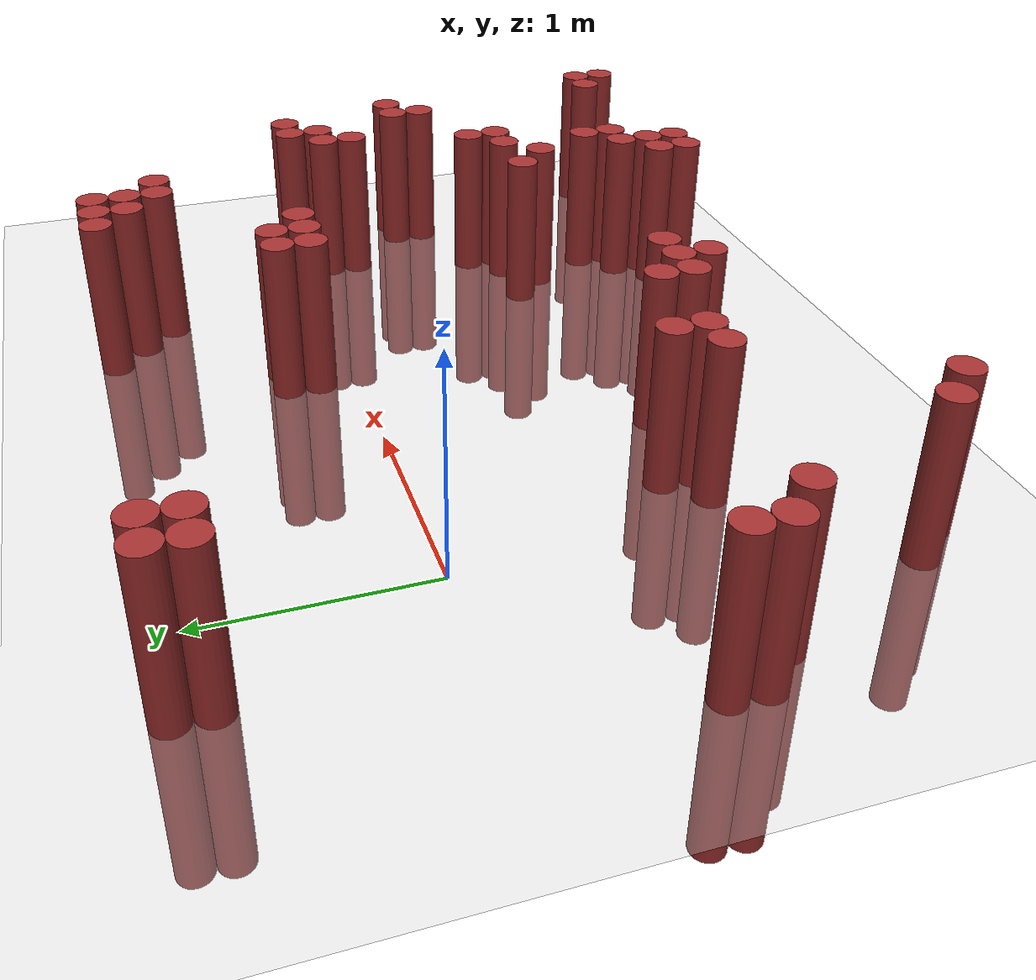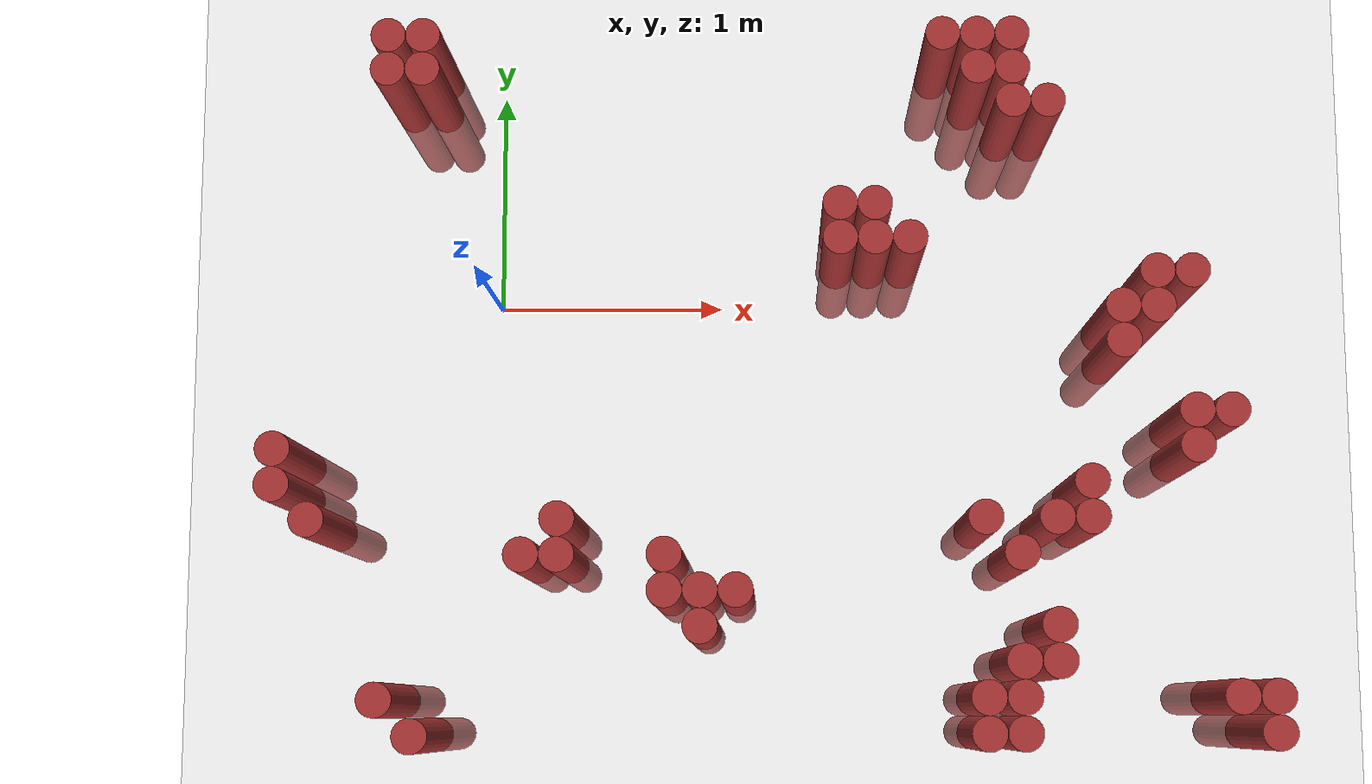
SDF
<sdf version="1.6">
 <world name="default">
  <model name="ground_plane">
   <static>1</static>
   <link name="link">
    <collision name="collision">
     <geometry><plane><normal>0 0 1</normal><size>100 100</size></plane></geometry>
     <surface><friction><ode><mu>100</mu><mu2>50</mu2></ode></friction></surface>
    </collision>
    <visual name="visual">
     <cast_shadows>0</cast_shadows>
     <geometry><plane><normal>0 0 1</normal><size>100 100</size></plane></geometry>
     <material>
      <script><uri>file://media/materials/scripts/gazebo.material</uri><name>Gazebo/Grey</name></script>
     </material>
    </visual>
   </link>
  </model>
  <model name="unit_cylinder_319">
   <static>1</static>
   <pose>-0.875000 -0.875000 0.000000 0.000000 0.000000 0.000000</pose>
   <link name="link">
    <inertial>
     <mass>1</mass>
     <inertia><ixx>0.145833</ixx><ixy>0</ixy><ixz>0</ixz><iyy>0.145833</iyy><iyz>0</iyz><izz>0.125</izz></inertia>
    </inertial>
    <collision name="collision">
     <geometry><cylinder><radius>0.075000</radius><length>1.5</length></cylinder></geometry>
    </collision>
    <visual name="visual">
     <geometry><cylinder><radius>0.075000</radius><length>1.5</length></cylinder></geometry>
     <material>
      <ambient>0.648000 0.192000 0.192000 1</ambient>
      <diffuse>0.648000 0.192000 0.192000 1</diffuse>
     </material>
     <material>
      <script><name>Gazebo/Grey</name><uri>file://media/materials/scripts/gazebo.material</uri></script>
     </material>
    </visual>
   </link>
  </model>
  <model name="unit_cylinder_320">
   <static>1</static>
   <pose>-0.875000 -0.725000 0.000000 0.000000 0.000000 0.000000</pose>
   <link name="link">
    <inertial>
     <mass>1</mass>
     <inertia><ixx>0.145833</ixx><ixy>0</ixy><ixz>0</ixz><iyy>0.145833</iyy><iyz>0</iyz><izz>0.125</izz></inertia>
    </inertial>
    <collision name="collision">
     <geometry><cylinder><radius>0.075000</radius><length>1.5</length></cylinder></geometry>
    </collision>
    <visual name="visual">
     <geometry><cylinder><radius>0.075000</radius><length>1.5</length></cylinder></geometry>
     <material>
      <ambient>0.648000 0.192000 0.192000 1</ambient>
      <diffuse>0.648000 0.192000 0.192000 1</diffuse>
     </material>
     <material>
      <script><name>Gazebo/Grey</name><uri>file://media/materials/scripts/gazebo.material</uri></script>
     </material>
    </visual>
   </link>
  </model>
  <model name="unit_cylinder_321">
   <static>1</static>
   <pose>-0.725000 -1.025000 0.000000 0.000000 0.000000 0.000000</pose>
   <link name="link">
    <inertial>
     <mass>1</mass>
     <inertia><ixx>0.145833</ixx><ixy>0</ixy><ixz>0</ixz><iyy>0.145833</iyy><iyz>0</iyz><izz>0.125</izz></inertia>
    </inertial>
    <collision name="collision">
     <geometry><cylinder><radius>0.075000</radius><length>1.5</length></cylinder></geometry>
    </collision>
    <visual name="visual">
     <geometry><cylinder><radius>0.075000</radius><length>1.5</length></cylinder></geometry>
     <material>
      <ambient>0.648000 0.192000 0.192000 1</ambient>
      <diffuse>0.648000 0.192000 0.192000 1</diffuse>
     </material>
     <material>
      <script><name>Gazebo/Grey</name><uri>file://media/materials/scripts/gazebo.material</uri></script>
     </material>
    </visual>
   </link>
  </model>
  <model name="unit_cylinder_325">
   <static>1</static>
   <pose>-0.425000 -1.775000 0.000000 0.000000 0.000000 0.000000</pose>
   <link name="link">
    <inertial>
     <mass>1</mass>
     <inertia><ixx>0.145833</ixx><ixy>0</ixy><ixz>0</ixz><iyy>0.145833</iyy><iyz>0</iyz><izz>0.125</izz></inertia>
    </inertial>
    <collision name="collision">
     <geometry><cylinder><radius>0.075000</radius><length>1.5</length></cylinder></geometry>
    </collision>
    <visual name="visual">
     <geometry><cylinder><radius>0.075000</radius><length>1.5</length></cylinder></geometry>
     <material>
      <ambient>0.648000 0.192000 0.192000 1</ambient>
      <diffuse>0.648000 0.192000 0.192000 1</diffuse>
     </material>
     <material>
      <script><name>Gazebo/Grey</name><uri>file://media/materials/scripts/gazebo.material</uri></script>
     </material>
    </visual>
   </link>
  </model>
  <model name="unit_cylinder_326">
   <static>1</static>
   <pose>-0.425000 0.925000 0.000000 0.000000 0.000000 0.000000</pose>
   <link name="link">
    <inertial>
     <mass>1</mass>
     <inertia><ixx>0.145833</ixx><ixy>0</ixy><ixz>0</ixz><iyy>0.145833</iyy><iyz>0</iyz><izz>0.125</izz></inertia>
    </inertial>
    <collision name="collision">
     <geometry><cylinder><radius>0.075000</radius><length>1.5</length></cylinder></geometry>
    </collision>
    <visual name="visual">
     <geometry><cylinder><radius>0.075000</radius><length>1.5</length></cylinder></geometry>
     <material>
      <ambient>0.648000 0.192000 0.192000 1</ambient>
      <diffuse>0.648000 0.192000 0.192000 1</diffuse>
     </material>
     <material>
      <script><name>Gazebo/Grey</name><uri>file://media/materials/scripts/gazebo.material</uri></script>
     </material>
    </visual>
   </link>
  </model>
  <model name="unit_cylinder_327">
   <static>1</static>
   <pose>-0.425000 1.075000 0.000000 0.000000 0.000000 0.000000</pose>
   <link name="link">
    <inertial>
     <mass>1</mass>
     <inertia><ixx>0.145833</ixx><ixy>0</ixy><ixz>0</ixz><iyy>0.145833</iyy><iyz>0</iyz><izz>0.125</izz></inertia>
    </inertial>
    <collision name="collision">
     <geometry><cylinder><radius>0.075000</radius><length>1.5</length></cylinder></geometry>
    </collision>
    <visual name="visual">
     <geometry><cylinder><radius>0.075000</radius><length>1.5</length></cylinder></geometry>
     <material>
      <ambient>0.648000 0.192000 0.192000 1</ambient>
      <diffuse>0.648000 0.192000 0.192000 1</diffuse>
     </material>
     <material>
      <script><name>Gazebo/Grey</name><uri>file://media/materials/scripts/gazebo.material</uri></script>
     </material>
    </visual>
   </link>
  </model>
  <model name="unit_cylinder_329">
   <static>1</static>
   <pose>-0.275000 -1.925000 0.000000 0.000000 0.000000 0.000000</pose>
   <link name="link">
    <inertial>
     <mass>1</mass>
     <inertia><ixx>0.145833</ixx><ixy>0</ixy><ixz>0</ixz><iyy>0.145833</iyy><iyz>0</iyz><izz>0.125</izz></inertia>
    </inertial>
    <collision name="collision">
     <geometry><cylinder><radius>0.075000</radius><length>1.5</length></cylinder></geometry>
    </collision>
    <visual name="visual">
     <geometry><cylinder><radius>0.075000</radius><length>1.5</length></cylinder></geometry>
     <material>
      <ambient>0.648000 0.192000 0.192000 1</ambient>
      <diffuse>0.648000 0.192000 0.192000 1</diffuse>
     </material>
     <material>
      <script><name>Gazebo/Grey</name><uri>file://media/materials/scripts/gazebo.material</uri></script>
     </material>
    </visual>
   </link>
  </model>
  <model name="unit_cylinder_330">
   <static>1</static>
   <pose>-0.275000 0.925000 0.000000 0.000000 0.000000 0.000000</pose>
   <link name="link">
    <inertial>
     <mass>1</mass>
     <inertia><ixx>0.145833</ixx><ixy>0</ixy><ixz>0</ixz><iyy>0.145833</iyy><iyz>0</iyz><izz>0.125</izz></inertia>
    </inertial>
    <collision name="collision">
     <geometry><cylinder><radius>0.075000</radius><length>1.5</length></cylinder></geometry>
    </collision>
    <visual name="visual">
     <geometry><cylinder><radius>0.075000</radius><length>1.5</length></cylinder></geometry>
     <material>
      <ambient>0.648000 0.192000 0.192000 1</ambient>
      <diffuse>0.648000 0.192000 0.192000 1</diffuse>
     </material>
     <material>
      <script><name>Gazebo/Grey</name><uri>file://media/materials/scripts/gazebo.material</uri></script>
     </material>
    </visual>
   </link>
  </model>
  <model name="unit_cylinder_331">
   <static>1</static>
   <pose>-0.275000 1.075000 0.000000 0.000000 0.000000 0.000000</pose>
   <link name="link">
    <inertial>
     <mass>1</mass>
     <inertia><ixx>0.145833</ixx><ixy>0</ixy><ixz>0</ixz><iyy>0.145833</iyy><iyz>0</iyz><izz>0.125</izz></inertia>
    </inertial>
    <collision name="collision">
     <geometry><cylinder><radius>0.075000</radius><length>1.5</length></cylinder></geometry>
    </collision>
    <visual name="visual">
     <geometry><cylinder><radius>0.075000</radius><length>1.5</length></cylinder></geometry>
     <material>
      <ambient>0.648000 0.192000 0.192000 1</ambient>
      <diffuse>0.648000 0.192000 0.192000 1</diffuse>
     </material>
     <material>
      <script><name>Gazebo/Grey</name><uri>file://media/materials/scripts/gazebo.material</uri></script>
     </material>
    </visual>
   </link>
  </model>
  <model name="unit_cylinder_335">
   <static>1</static>
   <pose>0.175000 -1.175000 0.000000 0.000000 0.000000 0.000000</pose>
   <link name="link">
    <inertial>
     <mass>1</mass>
     <inertia><ixx>0.145833</ixx><ixy>0</ixy><ixz>0</ixz><iyy>0.145833</iyy><iyz>0</iyz><izz>0.125</izz></inertia>
    </inertial>
    <collision name="collision">
     <geometry><cylinder><radius>0.075000</radius><length>1.5</length></cylinder></geometry>
    </collision>
    <visual name="visual">
     <geometry><cylinder><radius>0.075000</radius><length>1.5</length></cylinder></geometry>
     <material>
      <ambient>0.648000 0.192000 0.192000 1</ambient>
      <diffuse>0.648000 0.192000 0.192000 1</diffuse>
     </material>
     <material>
      <script><name>Gazebo/Grey</name><uri>file://media/materials/scripts/gazebo.material</uri></script>
     </material>
    </visual>
   </link>
  </model>
  <model name="unit_cylinder_337">
   <static>1</static>
   <pose>0.325000 -1.175000 0.000000 0.000000 0.000000 0.000000</pose>
   <link name="link">
    <inertial>
     <mass>1</mass>
     <inertia><ixx>0.145833</ixx><ixy>0</ixy><ixz>0</ixz><iyy>0.145833</iyy><iyz>0</iyz><izz>0.125</izz></inertia>
    </inertial>
    <collision name="collision">
     <geometry><cylinder><radius>0.075000</radius><length>1.5</length></cylinder></geometry>
    </collision>
    <visual name="visual">
     <geometry><cylinder><radius>0.075000</radius><length>1.5</length></cylinder></geometry>
     <material>
      <ambient>0.648000 0.192000 0.192000 1</ambient>
      <diffuse>0.648000 0.192000 0.192000 1</diffuse>
     </material>
     <material>
      <script><name>Gazebo/Grey</name><uri>file://media/materials/scripts/gazebo.material</uri></script>
     </material>
    </visual>
   </link>
  </model>
  <model name="unit_cylinder_338">
   <static>1</static>
   <pose>0.325000 -1.025000 0.000000 0.000000 0.000000 0.000000</pose>
   <link name="link">
    <inertial>
     <mass>1</mass>
     <inertia><ixx>0.145833</ixx><ixy>0</ixy><ixz>0</ixz><iyy>0.145833</iyy><iyz>0</iyz><izz>0.125</izz></inertia>
    </inertial>
    <collision name="collision">
     <geometry><cylinder><radius>0.075000</radius><length>1.5</length></cylinder></geometry>
    </collision>
    <visual name="visual">
     <geometry><cylinder><radius>0.075000</radius><length>1.5</length></cylinder></geometry>
     <material>
      <ambient>0.648000 0.192000 0.192000 1</ambient>
      <diffuse>0.648000 0.192000 0.192000 1</diffuse>
     </material>
     <material>
      <script><name>Gazebo/Grey</name><uri>file://media/materials/scripts/gazebo.material</uri></script>
     </material>
    </visual>
   </link>
  </model>
  <model name="unit_cylinder_339">
   <static>1</static>
   <pose>0.775000 -1.325000 0.000000 0.000000 0.000000 0.000000</pose>
   <link name="link">
    <inertial>
     <mass>1</mass>
     <inertia><ixx>0.145833</ixx><ixy>0</ixy><ixz>0</ixz><iyy>0.145833</iyy><iyz>0</iyz><izz>0.125</izz></inertia>
    </inertial>
    <collision name="collision">
     <geometry><cylinder><radius>0.075000</radius><length>1.5</length></cylinder></geometry>
    </collision>
    <visual name="visual">
     <geometry><cylinder><radius>0.075000</radius><length>1.5</length></cylinder></geometry>
     <material>
      <ambient>0.648000 0.192000 0.192000 1</ambient>
      <diffuse>0.648000 0.192000 0.192000 1</diffuse>
     </material>
     <material>
      <script><name>Gazebo/Grey</name><uri>file://media/materials/scripts/gazebo.material</uri></script>
     </material>
    </visual>
   </link>
  </model>
  <model name="unit_cylinder_340">
   <static>1</static>
   <pose>0.775000 -1.175000 0.000000 0.000000 0.000000 0.000000</pose>
   <link name="link">
    <inertial>
     <mass>1</mass>
     <inertia><ixx>0.145833</ixx><ixy>0</ixy><ixz>0</ixz><iyy>0.145833</iyy><iyz>0</iyz><izz>0.125</izz></inertia>
    </inertial>
    <collision name="collision">
     <geometry><cylinder><radius>0.075000</radius><length>1.5</length></cylinder></geometry>
    </collision>
    <visual name="visual">
     <geometry><cylinder><radius>0.075000</radius><length>1.5</length></cylinder></geometry>
     <material>
      <ambient>0.648000 0.192000 0.192000 1</ambient>
      <diffuse>0.648000 0.192000 0.192000 1</diffuse>
     </material>
     <material>
      <script><name>Gazebo/Grey</name><uri>file://media/materials/scripts/gazebo.material</uri></script>
     </material>
    </visual>
   </link>
  </model>
  <model name="unit_cylinder_341">
   <static>1</static>
   <pose>0.925000 -1.475000 0.000000 0.000000 0.000000 0.000000</pose>
   <link name="link">
    <inertial>
     <mass>1</mass>
     <inertia><ixx>0.145833</ixx><ixy>0</ixy><ixz>0</ixz><iyy>0.145833</iyy><iyz>0</iyz><izz>0.125</izz></inertia>
    </inertial>
    <collision name="collision">
     <geometry><cylinder><radius>0.075000</radius><length>1.5</length></cylinder></geometry>
    </collision>
    <visual name="visual">
     <geometry><cylinder><radius>0.075000</radius><length>1.5</length></cylinder></geometry>
     <material>
      <ambient>0.648000 0.192000 0.192000 1</ambient>
      <diffuse>0.648000 0.192000 0.192000 1</diffuse>
     </material>
     <material>
      <script><name>Gazebo/Grey</name><uri>file://media/materials/scripts/gazebo.material</uri></script>
     </material>
    </visual>
   </link>
  </model>
  <model name="unit_cylinder_342">
   <static>1</static>
   <pose>0.925000 -1.325000 0.000000 0.000000 0.000000 0.000000</pose>
   <link name="link">
    <inertial>
     <mass>1</mass>
     <inertia><ixx>0.145833</ixx><ixy>0</ixy><ixz>0</ixz><iyy>0.145833</iyy><iyz>0</iyz><izz>0.125</izz></inertia>
    </inertial>
    <collision name="collision">
     <geometry><cylinder><radius>0.075000</radius><length>1.5</length></cylinder></geometry>
    </collision>
    <visual name="visual">
     <geometry><cylinder><radius>0.075000</radius><length>1.5</length></cylinder></geometry>
     <material>
      <ambient>0.648000 0.192000 0.192000 1</ambient>
      <diffuse>0.648000 0.192000 0.192000 1</diffuse>
     </material>
     <material>
      <script><name>Gazebo/Grey</name><uri>file://media/materials/scripts/gazebo.material</uri></script>
     </material>
    </visual>
   </link>
  </model>
  <model name="unit_cylinder_343">
   <static>1</static>
   <pose>1.075000 -1.325000 0.000000 0.000000 0.000000 0.000000</pose>
   <link name="link">
    <inertial>
     <mass>1</mass>
     <inertia><ixx>0.145833</ixx><ixy>0</ixy><ixz>0</ixz><iyy>0.145833</iyy><iyz>0</iyz><izz>0.125</izz></inertia>
    </inertial>
    <collision name="collision">
     <geometry><cylinder><radius>0.075000</radius><length>1.5</length></cylinder></geometry>
    </collision>
    <visual name="visual">
     <geometry><cylinder><radius>0.075000</radius><length>1.5</length></cylinder></geometry>
     <material>
      <ambient>0.648000 0.192000 0.192000 1</ambient>
      <diffuse>0.648000 0.192000 0.192000 1</diffuse>
     </material>
     <material>
      <script><name>Gazebo/Grey</name><uri>file://media/materials/scripts/gazebo.material</uri></script>
     </material>
    </visual>
   </link>
  </model>
  <model name="unit_cylinder_350">
   <static>1</static>
   <pose>1.525000 0.175000 0.000000 0.000000 0.000000 0.000000</pose>
   <link name="link">
    <inertial>
     <mass>1</mass>
     <inertia><ixx>0.145833</ixx><ixy>0</ixy><ixz>0</ixz><iyy>0.145833</iyy><iyz>0</iyz><izz>0.125</izz></inertia>
    </inertial>
    <collision name="collision">
     <geometry><cylinder><radius>0.075000</radius><length>1.5</length></cylinder></geometry>
    </collision>
    <visual name="visual">
     <geometry><cylinder><radius>0.075000</radius><length>1.5</length></cylinder></geometry>
     <material>
      <ambient>0.648000 0.192000 0.192000 1</ambient>
      <diffuse>0.648000 0.192000 0.192000 1</diffuse>
     </material>
     <material>
      <script><name>Gazebo/Grey</name><uri>file://media/materials/scripts/gazebo.material</uri></script>
     </material>
    </visual>
   </link>
  </model>
  <model name="unit_cylinder_351">
   <static>1</static>
   <pose>1.525000 0.325000 0.000000 0.000000 0.000000 0.000000</pose>
   <link name="link">
    <inertial>
     <mass>1</mass>
     <inertia><ixx>0.145833</ixx><ixy>0</ixy><ixz>0</ixz><iyy>0.145833</iyy><iyz>0</iyz><izz>0.125</izz></inertia>
    </inertial>
    <collision name="collision">
     <geometry><cylinder><radius>0.075000</radius><length>1.5</length></cylinder></geometry>
    </collision>
    <visual name="visual">
     <geometry><cylinder><radius>0.075000</radius><length>1.5</length></cylinder></geometry>
     <material>
      <ambient>0.648000 0.192000 0.192000 1</ambient>
      <diffuse>0.648000 0.192000 0.192000 1</diffuse>
     </material>
     <material>
      <script><name>Gazebo/Grey</name><uri>file://media/materials/scripts/gazebo.material</uri></script>
     </material>
    </visual>
   </link>
  </model>
  <model name="unit_cylinder_355">
   <static>1</static>
   <pose>1.675000 0.175000 0.000000 0.000000 0.000000 0.000000</pose>
   <link name="link">
    <inertial>
     <mass>1</mass>
     <inertia><ixx>0.145833</ixx><ixy>0</ixy><ixz>0</ixz><iyy>0.145833</iyy><iyz>0</iyz><izz>0.125</izz></inertia>
    </inertial>
    <collision name="collision">
     <geometry><cylinder><radius>0.075000</radius><length>1.5</length></cylinder></geometry>
    </collision>
    <visual name="visual">
     <geometry><cylinder><radius>0.075000</radius><length>1.5</length></cylinder></geometry>
     <material>
      <ambient>0.648000 0.192000 0.192000 1</ambient>
      <diffuse>0.648000 0.192000 0.192000 1</diffuse>
     </material>
     <material>
      <script><name>Gazebo/Grey</name><uri>file://media/materials/scripts/gazebo.material</uri></script>
     </material>
    </visual>
   </link>
  </model>
  <model name="unit_cylinder_356">
   <static>1</static>
   <pose>1.675000 0.325000 0.000000 0.000000 0.000000 0.000000</pose>
   <link name="link">
    <inertial>
     <mass>1</mass>
     <inertia><ixx>0.145833</ixx><ixy>0</ixy><ixz>0</ixz><iyy>0.145833</iyy><iyz>0</iyz><izz>0.125</izz></inertia>
    </inertial>
    <collision name="collision">
     <geometry><cylinder><radius>0.075000</radius><length>1.5</length></cylinder></geometry>
    </collision>
    <visual name="visual">
     <geometry><cylinder><radius>0.075000</radius><length>1.5</length></cylinder></geometry>
     <material>
      <ambient>0.648000 0.192000 0.192000 1</ambient>
      <diffuse>0.648000 0.192000 0.192000 1</diffuse>
     </material>
     <material>
      <script><name>Gazebo/Grey</name><uri>file://media/materials/scripts/gazebo.material</uri></script>
     </material>
    </visual>
   </link>
  </model>
  <model name="unit_cylinder_364">
   <static>1</static>
   <pose>1.825000 0.175000 0.000000 0.000000 0.000000 0.000000</pose>
   <link name="link">
    <inertial>
     <mass>1</mass>
     <inertia><ixx>0.145833</ixx><ixy>0</ixy><ixz>0</ixz><iyy>0.145833</iyy><iyz>0</iyz><izz>0.125</izz></inertia>
    </inertial>
    <collision name="collision">
     <geometry><cylinder><radius>0.075000</radius><length>1.5</length></cylinder></geometry>
    </collision>
    <visual name="visual">
     <geometry><cylinder><radius>0.075000</radius><length>1.5</length></cylinder></geometry>
     <material>
      <ambient>0.648000 0.192000 0.192000 1</ambient>
      <diffuse>0.648000 0.192000 0.192000 1</diffuse>
     </material>
     <material>
      <script><name>Gazebo/Grey</name><uri>file://media/materials/scripts/gazebo.material</uri></script>
     </material>
    </visual>
   </link>
  </model>
  <model name="unit_cylinder_373">
   <static>1</static>
   <pose>1.975000 1.075000 0.000000 0.000000 0.000000 0.000000</pose>
   <link name="link">
    <inertial>
     <mass>1</mass>
     <inertia><ixx>0.145833</ixx><ixy>0</ixy><ixz>0</ixz><iyy>0.145833</iyy><iyz>0</iyz><izz>0.125</izz></inertia>
    </inertial>
    <collision name="collision">
     <geometry><cylinder><radius>0.075000</radius><length>1.5</length></cylinder></geometry>
    </collision>
    <visual name="visual">
     <geometry><cylinder><radius>0.075000</radius><length>1.5</length></cylinder></geometry>
     <material>
      <ambient>0.648000 0.192000 0.192000 1</ambient>
      <diffuse>0.648000 0.192000 0.192000 1</diffuse>
     </material>
     <material>
      <script><name>Gazebo/Grey</name><uri>file://media/materials/scripts/gazebo.material</uri></script>
     </material>
    </visual>
   </link>
  </model>
  <model name="unit_cylinder_381">
   <static>1</static>
   <pose>2.125000 -1.925000 0.000000 0.000000 0.000000 0.000000</pose>
   <link name="link">
    <inertial>
     <mass>1</mass>
     <inertia><ixx>0.145833</ixx><ixy>0</ixy><ixz>0</ixz><iyy>0.145833</iyy><iyz>0</iyz><izz>0.125</izz></inertia>
    </inertial>
    <collision name="collision">
     <geometry><cylinder><radius>0.075000</radius><length>1.5</length></cylinder></geometry>
    </collision>
    <visual name="visual">
     <geometry><cylinder><radius>0.075000</radius><length>1.5</length></cylinder></geometry>
     <material>
      <ambient>0.648000 0.192000 0.192000 1</ambient>
      <diffuse>0.648000 0.192000 0.192000 1</diffuse>
     </material>
     <material>
      <script><name>Gazebo/Grey</name><uri>file://media/materials/scripts/gazebo.material</uri></script>
     </material>
    </visual>
   </link>
  </model>
  <model name="unit_cylinder_382">
   <static>1</static>
   <pose>2.125000 -1.775000 0.000000 0.000000 0.000000 0.000000</pose>
   <link name="link">
    <inertial>
     <mass>1</mass>
     <inertia><ixx>0.145833</ixx><ixy>0</ixy><ixz>0</ixz><iyy>0.145833</iyy><iyz>0</iyz><izz>0.125</izz></inertia>
    </inertial>
    <collision name="collision">
     <geometry><cylinder><radius>0.075000</radius><length>1.5</length></cylinder></geometry>
    </collision>
    <visual name="visual">
     <geometry><cylinder><radius>0.075000</radius><length>1.5</length></cylinder></geometry>
     <material>
      <ambient>0.648000 0.192000 0.192000 1</ambient>
      <diffuse>0.648000 0.192000 0.192000 1</diffuse>
     </material>
     <material>
      <script><name>Gazebo/Grey</name><uri>file://media/materials/scripts/gazebo.material</uri></script>
     </material>
    </visual>
   </link>
  </model>
  <model name="unit_cylinder_383">
   <static>1</static>
   <pose>2.125000 -1.025000 0.000000 0.000000 0.000000 0.000000</pose>
   <link name="link">
    <inertial>
     <mass>1</mass>
     <inertia><ixx>0.145833</ixx><ixy>0</ixy><ixz>0</ixz><iyy>0.145833</iyy><iyz>0</iyz><izz>0.125</izz></inertia>
    </inertial>
    <collision name="collision">
     <geometry><cylinder><radius>0.075000</radius><length>1.5</length></cylinder></geometry>
    </collision>
    <visual name="visual">
     <geometry><cylinder><radius>0.075000</radius><length>1.5</length></cylinder></geometry>
     <material>
      <ambient>0.648000 0.192000 0.192000 1</ambient>
      <diffuse>0.648000 0.192000 0.192000 1</diffuse>
     </material>
     <material>
      <script><name>Gazebo/Grey</name><uri>file://media/materials/scripts/gazebo.material</uri></script>
     </material>
    </visual>
   </link>
  </model>
  <model name="unit_cylinder_384">
   <static>1</static>
   <pose>2.125000 0.925000 0.000000 0.000000 0.000000 0.000000</pose>
   <link name="link">
    <inertial>
     <mass>1</mass>
     <inertia><ixx>0.145833</ixx><ixy>0</ixy><ixz>0</ixz><iyy>0.145833</iyy><iyz>0</iyz><izz>0.125</izz></inertia>
    </inertial>
    <collision name="collision">
     <geometry><cylinder><radius>0.075000</radius><length>1.5</length></cylinder></geometry>
    </collision>
    <visual name="visual">
     <geometry><cylinder><radius>0.075000</radius><length>1.5</length></cylinder></geometry>
     <material>
      <ambient>0.648000 0.192000 0.192000 1</ambient>
      <diffuse>0.648000 0.192000 0.192000 1</diffuse>
     </material>
     <material>
      <script><name>Gazebo/Grey</name><uri>file://media/materials/scripts/gazebo.material</uri></script>
     </material>
    </visual>
   </link>
  </model>
  <model name="unit_cylinder_385">
   <static>1</static>
   <pose>2.125000 1.075000 0.000000 0.000000 0.000000 0.000000</pose>
   <link name="link">
    <inertial>
     <mass>1</mass>
     <inertia><ixx>0.145833</ixx><ixy>0</ixy><ixz>0</ixz><iyy>0.145833</iyy><iyz>0</iyz><izz>0.125</izz></inertia>
    </inertial>
    <collision name="collision">
     <geometry><cylinder><radius>0.075000</radius><length>1.5</length></cylinder></geometry>
    </collision>
    <visual name="visual">
     <geometry><cylinder><radius>0.075000</radius><length>1.5</length></cylinder></geometry>
     <material>
      <ambient>0.648000 0.192000 0.192000 1</ambient>
      <diffuse>0.648000 0.192000 0.192000 1</diffuse>
     </material>
     <material>
      <script><name>Gazebo/Grey</name><uri>file://media/materials/scripts/gazebo.material</uri></script>
     </material>
    </visual>
   </link>
  </model>
  <model name="unit_cylinder_388">
   <static>1</static>
   <pose>2.275000 -1.925000 0.000000 0.000000 0.000000 0.000000</pose>
   <link name="link">
    <inertial>
     <mass>1</mass>
     <inertia><ixx>0.145833</ixx><ixy>0</ixy><ixz>0</ixz><iyy>0.145833</iyy><iyz>0</iyz><izz>0.125</izz></inertia>
    </inertial>
    <collision name="collision">
     <geometry><cylinder><radius>0.075000</radius><length>1.5</length></cylinder></geometry>
    </collision>
    <visual name="visual">
     <geometry><cylinder><radius>0.075000</radius><length>1.5</length></cylinder></geometry>
     <material>
      <ambient>0.648000 0.192000 0.192000 1</ambient>
      <diffuse>0.648000 0.192000 0.192000 1</diffuse>
     </material>
     <material>
      <script><name>Gazebo/Grey</name><uri>file://media/materials/scripts/gazebo.material</uri></script>
     </material>
    </visual>
   </link>
  </model>
  <model name="unit_cylinder_389">
   <static>1</static>
   <pose>2.275000 -1.775000 0.000000 0.000000 0.000000 0.000000</pose>
   <link name="link">
    <inertial>
     <mass>1</mass>
     <inertia><ixx>0.145833</ixx><ixy>0</ixy><ixz>0</ixz><iyy>0.145833</iyy><iyz>0</iyz><izz>0.125</izz></inertia>
    </inertial>
    <collision name="collision">
     <geometry><cylinder><radius>0.075000</radius><length>1.5</length></cylinder></geometry>
    </collision>
    <visual name="visual">
     <geometry><cylinder><radius>0.075000</radius><length>1.5</length></cylinder></geometry>
     <material>
      <ambient>0.648000 0.192000 0.192000 1</ambient>
      <diffuse>0.648000 0.192000 0.192000 1</diffuse>
     </material>
     <material>
      <script><name>Gazebo/Grey</name><uri>file://media/materials/scripts/gazebo.material</uri></script>
     </material>
    </visual>
   </link>
  </model>
  <model name="unit_cylinder_390">
   <static>1</static>
   <pose>2.275000 -1.625000 0.000000 0.000000 0.000000 0.000000</pose>
   <link name="link">
    <inertial>
     <mass>1</mass>
     <inertia><ixx>0.145833</ixx><ixy>0</ixy><ixz>0</ixz><iyy>0.145833</iyy><iyz>0</iyz><izz>0.125</izz></inertia>
    </inertial>
    <collision name="collision">
     <geometry><cylinder><radius>0.075000</radius><length>1.5</length></cylinder></geometry>
    </collision>
    <visual name="visual">
     <geometry><cylinder><radius>0.075000</radius><length>1.5</length></cylinder></geometry>
     <material>
      <ambient>0.648000 0.192000 0.192000 1</ambient>
      <diffuse>0.648000 0.192000 0.192000 1</diffuse>
     </material>
     <material>
      <script><name>Gazebo/Grey</name><uri>file://media/materials/scripts/gazebo.material</uri></script>
     </material>
    </visual>
   </link>
  </model>
  <model name="unit_cylinder_391">
   <static>1</static>
   <pose>2.275000 -1.175000 0.000000 0.000000 0.000000 0.000000</pose>
   <link name="link">
    <inertial>
     <mass>1</mass>
     <inertia><ixx>0.145833</ixx><ixy>0</ixy><ixz>0</ixz><iyy>0.145833</iyy><iyz>0</iyz><izz>0.125</izz></inertia>
    </inertial>
    <collision name="collision">
     <geometry><cylinder><radius>0.075000</radius><length>1.5</length></cylinder></geometry>
    </collision>
    <visual name="visual">
     <geometry><cylinder><radius>0.075000</radius><length>1.5</length></cylinder></geometry>
     <material>
      <ambient>0.648000 0.192000 0.192000 1</ambient>
      <diffuse>0.648000 0.192000 0.192000 1</diffuse>
     </material>
     <material>
      <script><name>Gazebo/Grey</name><uri>file://media/materials/scripts/gazebo.material</uri></script>
     </material>
    </visual>
   </link>
  </model>
  <model name="unit_cylinder_392">
   <static>1</static>
   <pose>2.275000 0.775000 0.000000 0.000000 0.000000 0.000000</pose>
   <link name="link">
    <inertial>
     <mass>1</mass>
     <inertia><ixx>0.145833</ixx><ixy>0</ixy><ixz>0</ixz><iyy>0.145833</iyy><iyz>0</iyz><izz>0.125</izz></inertia>
    </inertial>
    <collision name="collision">
     <geometry><cylinder><radius>0.075000</radius><length>1.5</length></cylinder></geometry>
    </collision>
    <visual name="visual">
     <geometry><cylinder><radius>0.075000</radius><length>1.5</length></cylinder></geometry>
     <material>
      <ambient>0.648000 0.192000 0.192000 1</ambient>
      <diffuse>0.648000 0.192000 0.192000 1</diffuse>
     </material>
     <material>
      <script><name>Gazebo/Grey</name><uri>file://media/materials/scripts/gazebo.material</uri></script>
     </material>
    </visual>
   </link>
  </model>
  <model name="unit_cylinder_393">
   <static>1</static>
   <pose>2.275000 0.925000 0.000000 0.000000 0.000000 0.000000</pose>
   <link name="link">
    <inertial>
     <mass>1</mass>
     <inertia><ixx>0.145833</ixx><ixy>0</ixy><ixz>0</ixz><iyy>0.145833</iyy><iyz>0</iyz><izz>0.125</izz></inertia>
    </inertial>
    <collision name="collision">
     <geometry><cylinder><radius>0.075000</radius><length>1.5</length></cylinder></geometry>
    </collision>
    <visual name="visual">
     <geometry><cylinder><radius>0.075000</radius><length>1.5</length></cylinder></geometry>
     <material>
      <ambient>0.648000 0.192000 0.192000 1</ambient>
      <diffuse>0.648000 0.192000 0.192000 1</diffuse>
     </material>
     <material>
      <script><name>Gazebo/Grey</name><uri>file://media/materials/scripts/gazebo.material</uri></script>
     </material>
    </visual>
   </link>
  </model>
  <model name="unit_cylinder_394">
   <static>1</static>
   <pose>2.275000 1.075000 0.000000 0.000000 0.000000 0.000000</pose>
   <link name="link">
    <inertial>
     <mass>1</mass>
     <inertia><ixx>0.145833</ixx><ixy>0</ixy><ixz>0</ixz><iyy>0.145833</iyy><iyz>0</iyz><izz>0.125</izz></inertia>
    </inertial>
    <collision name="collision">
     <geometry><cylinder><radius>0.075000</radius><length>1.5</length></cylinder></geometry>
    </collision>
    <visual name="visual">
     <geometry><cylinder><radius>0.075000</radius><length>1.5</length></cylinder></geometry>
     <material>
      <ambient>0.648000 0.192000 0.192000 1</ambient>
      <diffuse>0.648000 0.192000 0.192000 1</diffuse>
     </material>
     <material>
      <script><name>Gazebo/Grey</name><uri>file://media/materials/scripts/gazebo.material</uri></script>
     </material>
    </visual>
   </link>
  </model>
  <model name="unit_cylinder_395">
   <static>1</static>
   <pose>2.425000 -1.625000 0.000000 0.000000 0.000000 0.000000</pose>
   <link name="link">
    <inertial>
     <mass>1</mass>
     <inertia><ixx>0.145833</ixx><ixy>0</ixy><ixz>0</ixz><iyy>0.145833</iyy><iyz>0</iyz><izz>0.125</izz></inertia>
    </inertial>
    <collision name="collision">
     <geometry><cylinder><radius>0.075000</radius><length>1.5</length></cylinder></geometry>
    </collision>
    <visual name="visual">
     <geometry><cylinder><radius>0.075000</radius><length>1.5</length></cylinder></geometry>
     <material>
      <ambient>0.648000 0.192000 0.192000 1</ambient>
      <diffuse>0.648000 0.192000 0.192000 1</diffuse>
     </material>
     <material>
      <script><name>Gazebo/Grey</name><uri>file://media/materials/scripts/gazebo.material</uri></script>
     </material>
    </visual>
   </link>
  </model>
  <model name="unit_cylinder_396">
   <static>1</static>
   <pose>2.425000 -1.475000 0.000000 0.000000 0.000000 0.000000</pose>
   <link name="link">
    <inertial>
     <mass>1</mass>
     <inertia><ixx>0.145833</ixx><ixy>0</ixy><ixz>0</ixz><iyy>0.145833</iyy><iyz>0</iyz><izz>0.125</izz></inertia>
    </inertial>
    <collision name="collision">
     <geometry><cylinder><radius>0.075000</radius><length>1.5</length></cylinder></geometry>
    </collision>
    <visual name="visual">
     <geometry><cylinder><radius>0.075000</radius><length>1.5</length></cylinder></geometry>
     <material>
      <ambient>0.648000 0.192000 0.192000 1</ambient>
      <diffuse>0.648000 0.192000 0.192000 1</diffuse>
     </material>
     <material>
      <script><name>Gazebo/Grey</name><uri>file://media/materials/scripts/gazebo.material</uri></script>
     </material>
    </visual>
   </link>
  </model>
  <model name="unit_cylinder_397">
   <static>1</static>
   <pose>2.425000 -1.025000 0.000000 0.000000 0.000000 0.000000</pose>
   <link name="link">
    <inertial>
     <mass>1</mass>
     <inertia><ixx>0.145833</ixx><ixy>0</ixy><ixz>0</ixz><iyy>0.145833</iyy><iyz>0</iyz><izz>0.125</izz></inertia>
    </inertial>
    <collision name="collision">
     <geometry><cylinder><radius>0.075000</radius><length>1.5</length></cylinder></geometry>
    </collision>
    <visual name="visual">
     <geometry><cylinder><radius>0.075000</radius><length>1.5</length></cylinder></geometry>
     <material>
      <ambient>0.648000 0.192000 0.192000 1</ambient>
      <diffuse>0.648000 0.192000 0.192000 1</diffuse>
     </material>
     <material>
      <script><name>Gazebo/Grey</name><uri>file://media/materials/scripts/gazebo.material</uri></script>
     </material>
    </visual>
   </link>
  </model>
  <model name="unit_cylinder_398">
   <static>1</static>
   <pose>2.425000 0.775000 0.000000 0.000000 0.000000 0.000000</pose>
   <link name="link">
    <inertial>
     <mass>1</mass>
     <inertia><ixx>0.145833</ixx><ixy>0</ixy><ixz>0</ixz><iyy>0.145833</iyy><iyz>0</iyz><izz>0.125</izz></inertia>
    </inertial>
    <collision name="collision">
     <geometry><cylinder><radius>0.075000</radius><length>1.5</length></cylinder></geometry>
    </collision>
    <visual name="visual">
     <geometry><cylinder><radius>0.075000</radius><length>1.5</length></cylinder></geometry>
     <material>
      <ambient>0.648000 0.192000 0.192000 1</ambient>
      <diffuse>0.648000 0.192000 0.192000 1</diffuse>
     </material>
     <material>
      <script><name>Gazebo/Grey</name><uri>file://media/materials/scripts/gazebo.material</uri></script>
     </material>
    </visual>
   </link>
  </model>
  <model name="unit_cylinder_401">
   <static>1</static>
   <pose>2.575000 -1.025000 0.000000 0.000000 0.000000 0.000000</pose>
   <link name="link">
    <inertial>
     <mass>1</mass>
     <inertia><ixx>0.145833</ixx><ixy>0</ixy><ixz>0</ixz><iyy>0.145833</iyy><iyz>0</iyz><izz>0.125</izz></inertia>
    </inertial>
    <collision name="collision">
     <geometry><cylinder><radius>0.075000</radius><length>1.5</length></cylinder></geometry>
    </collision>
    <visual name="visual">
     <geometry><cylinder><radius>0.075000</radius><length>1.5</length></cylinder></geometry>
     <material>
      <ambient>0.648000 0.192000 0.192000 1</ambient>
      <diffuse>0.648000 0.192000 0.192000 1</diffuse>
     </material>
     <material>
      <script><name>Gazebo/Grey</name><uri>file://media/materials/scripts/gazebo.material</uri></script>
     </material>
    </visual>
   </link>
  </model>
  <model name="unit_cylinder_402">
   <static>1</static>
   <pose>2.575000 -0.875000 0.000000 0.000000 0.000000 0.000000</pose>
   <link name="link">
    <inertial>
     <mass>1</mass>
     <inertia><ixx>0.145833</ixx><ixy>0</ixy><ixz>0</ixz><iyy>0.145833</iyy><iyz>0</iyz><izz>0.125</izz></inertia>
    </inertial>
    <collision name="collision">
     <geometry><cylinder><radius>0.075000</radius><length>1.5</length></cylinder></geometry>
    </collision>
    <visual name="visual">
     <geometry><cylinder><radius>0.075000</radius><length>1.5</length></cylinder></geometry>
     <material>
      <ambient>0.648000 0.192000 0.192000 1</ambient>
      <diffuse>0.648000 0.192000 0.192000 1</diffuse>
     </material>
     <material>
      <script><name>Gazebo/Grey</name><uri>file://media/materials/scripts/gazebo.material</uri></script>
     </material>
    </visual>
   </link>
  </model>
  <model name="unit_cylinder_407">
   <static>1</static>
   <pose>2.725000 -0.275000 0.000000 0.000000 0.000000 0.000000</pose>
   <link name="link">
    <inertial>
     <mass>1</mass>
     <inertia><ixx>0.145833</ixx><ixy>0</ixy><ixz>0</ixz><iyy>0.145833</iyy><iyz>0</iyz><izz>0.125</izz></inertia>
    </inertial>
    <collision name="collision">
     <geometry><cylinder><radius>0.075000</radius><length>1.5</length></cylinder></geometry>
    </collision>
    <visual name="visual">
     <geometry><cylinder><radius>0.075000</radius><length>1.5</length></cylinder></geometry>
     <material>
      <ambient>0.648000 0.192000 0.192000 1</ambient>
      <diffuse>0.648000 0.192000 0.192000 1</diffuse>
     </material>
     <material>
      <script><name>Gazebo/Grey</name><uri>file://media/materials/scripts/gazebo.material</uri></script>
     </material>
    </visual>
   </link>
  </model>
  <model name="unit_cylinder_408">
   <static>1</static>
   <pose>2.725000 -0.125000 0.000000 0.000000 0.000000 0.000000</pose>
   <link name="link">
    <inertial>
     <mass>1</mass>
     <inertia><ixx>0.145833</ixx><ixy>0</ixy><ixz>0</ixz><iyy>0.145833</iyy><iyz>0</iyz><izz>0.125</izz></inertia>
    </inertial>
    <collision name="collision">
     <geometry><cylinder><radius>0.075000</radius><length>1.5</length></cylinder></geometry>
    </collision>
    <visual name="visual">
     <geometry><cylinder><radius>0.075000</radius><length>1.5</length></cylinder></geometry>
     <material>
      <ambient>0.648000 0.192000 0.192000 1</ambient>
      <diffuse>0.648000 0.192000 0.192000 1</diffuse>
     </material>
     <material>
      <script><name>Gazebo/Grey</name><uri>file://media/materials/scripts/gazebo.material</uri></script>
     </material>
    </visual>
   </link>
  </model>
  <model name="unit_cylinder_414">
   <static>1</static>
   <pose>2.875000 -0.125000 0.000000 0.000000 0.000000 0.000000</pose>
   <link name="link">
    <inertial>
     <mass>1</mass>
     <inertia><ixx>0.145833</ixx><ixy>0</ixy><ixz>0</ixz><iyy>0.145833</iyy><iyz>0</iyz><izz>0.125</izz></inertia>
    </inertial>
    <collision name="collision">
     <geometry><cylinder><radius>0.075000</radius><length>1.5</length></cylinder></geometry>
    </collision>
    <visual name="visual">
     <geometry><cylinder><radius>0.075000</radius><length>1.5</length></cylinder></geometry>
     <material>
      <ambient>0.648000 0.192000 0.192000 1</ambient>
      <diffuse>0.648000 0.192000 0.192000 1</diffuse>
     </material>
     <material>
      <script><name>Gazebo/Grey</name><uri>file://media/materials/scripts/gazebo.material</uri></script>
     </material>
    </visual>
   </link>
  </model>
  <model name="unit_cylinder_415">
   <static>1</static>
   <pose>2.875000 0.025000 0.000000 0.000000 0.000000 0.000000</pose>
   <link name="link">
    <inertial>
     <mass>1</mass>
     <inertia><ixx>0.145833</ixx><ixy>0</ixy><ixz>0</ixz><iyy>0.145833</iyy><iyz>0</iyz><izz>0.125</izz></inertia>
    </inertial>
    <collision name="collision">
     <geometry><cylinder><radius>0.075000</radius><length>1.5</length></cylinder></geometry>
    </collision>
    <visual name="visual">
     <geometry><cylinder><radius>0.075000</radius><length>1.5</length></cylinder></geometry>
     <material>
      <ambient>0.648000 0.192000 0.192000 1</ambient>
      <diffuse>0.648000 0.192000 0.192000 1</diffuse>
     </material>
     <material>
      <script><name>Gazebo/Grey</name><uri>file://media/materials/scripts/gazebo.material</uri></script>
     </material>
    </visual>
   </link>
  </model>
  <model name="unit_cylinder_421">
   <static>1</static>
   <pose>3.025000 -0.725000 0.000000 0.000000 0.000000 0.000000</pose>
   <link name="link">
    <inertial>
     <mass>1</mass>
     <inertia><ixx>0.145833</ixx><ixy>0</ixy><ixz>0</ixz><iyy>0.145833</iyy><iyz>0</iyz><izz>0.125</izz></inertia>
    </inertial>
    <collision name="collision">
     <geometry><cylinder><radius>0.075000</radius><length>1.5</length></cylinder></geometry>
    </collision>
    <visual name="visual">
     <geometry><cylinder><radius>0.075000</radius><length>1.5</length></cylinder></geometry>
     <material>
      <ambient>0.648000 0.192000 0.192000 1</ambient>
      <diffuse>0.648000 0.192000 0.192000 1</diffuse>
     </material>
     <material>
      <script><name>Gazebo/Grey</name><uri>file://media/materials/scripts/gazebo.material</uri></script>
     </material>
    </visual>
   </link>
  </model>
  <model name="unit_cylinder_422">
   <static>1</static>
   <pose>3.025000 -0.575000 0.000000 0.000000 0.000000 0.000000</pose>
   <link name="link">
    <inertial>
     <mass>1</mass>
     <inertia><ixx>0.145833</ixx><ixy>0</ixy><ixz>0</ixz><iyy>0.145833</iyy><iyz>0</iyz><izz>0.125</izz></inertia>
    </inertial>
    <collision name="collision">
     <geometry><cylinder><radius>0.075000</radius><length>1.5</length></cylinder></geometry>
    </collision>
    <visual name="visual">
     <geometry><cylinder><radius>0.075000</radius><length>1.5</length></cylinder></geometry>
     <material>
      <ambient>0.648000 0.192000 0.192000 1</ambient>
      <diffuse>0.648000 0.192000 0.192000 1</diffuse>
     </material>
     <material>
      <script><name>Gazebo/Grey</name><uri>file://media/materials/scripts/gazebo.material</uri></script>
     </material>
    </visual>
   </link>
  </model>
  <model name="unit_cylinder_423">
   <static>1</static>
   <pose>3.025000 0.025000 0.000000 0.000000 0.000000 0.000000</pose>
   <link name="link">
    <inertial>
     <mass>1</mass>
     <inertia><ixx>0.145833</ixx><ixy>0</ixy><ixz>0</ixz><iyy>0.145833</iyy><iyz>0</iyz><izz>0.125</izz></inertia>
    </inertial>
    <collision name="collision">
     <geometry><cylinder><radius>0.075000</radius><length>1.5</length></cylinder></geometry>
    </collision>
    <visual name="visual">
     <geometry><cylinder><radius>0.075000</radius><length>1.5</length></cylinder></geometry>
     <material>
      <ambient>0.648000 0.192000 0.192000 1</ambient>
      <diffuse>0.648000 0.192000 0.192000 1</diffuse>
     </material>
     <material>
      <script><name>Gazebo/Grey</name><uri>file://media/materials/scripts/gazebo.material</uri></script>
     </material>
    </visual>
   </link>
  </model>
  <model name="unit_cylinder_427">
   <static>1</static>
   <pose>3.175000 -1.775000 0.000000 0.000000 0.000000 0.000000</pose>
   <link name="link">
    <inertial>
     <mass>1</mass>
     <inertia><ixx>0.145833</ixx><ixy>0</ixy><ixz>0</ixz><iyy>0.145833</iyy><iyz>0</iyz><izz>0.125</izz></inertia>
    </inertial>
    <collision name="collision">
     <geometry><cylinder><radius>0.075000</radius><length>1.5</length></cylinder></geometry>
    </collision>
    <visual name="visual">
     <geometry><cylinder><radius>0.075000</radius><length>1.5</length></cylinder></geometry>
     <material>
      <ambient>0.648000 0.192000 0.192000 1</ambient>
      <diffuse>0.648000 0.192000 0.192000 1</diffuse>
     </material>
     <material>
      <script><name>Gazebo/Grey</name><uri>file://media/materials/scripts/gazebo.material</uri></script>
     </material>
    </visual>
   </link>
  </model>
  <model name="unit_cylinder_428">
   <static>1</static>
   <pose>3.175000 -0.575000 0.000000 0.000000 0.000000 0.000000</pose>
   <link name="link">
    <inertial>
     <mass>1</mass>
     <inertia><ixx>0.145833</ixx><ixy>0</ixy><ixz>0</ixz><iyy>0.145833</iyy><iyz>0</iyz><izz>0.125</izz></inertia>
    </inertial>
    <collision name="collision">
     <geometry><cylinder><radius>0.075000</radius><length>1.5</length></cylinder></geometry>
    </collision>
    <visual name="visual">
     <geometry><cylinder><radius>0.075000</radius><length>1.5</length></cylinder></geometry>
     <material>
      <ambient>0.648000 0.192000 0.192000 1</ambient>
      <diffuse>0.648000 0.192000 0.192000 1</diffuse>
     </material>
     <material>
      <script><name>Gazebo/Grey</name><uri>file://media/materials/scripts/gazebo.material</uri></script>
     </material>
    </visual>
   </link>
  </model>
  <model name="unit_cylinder_432">
   <static>1</static>
   <pose>3.325000 -1.925000 0.000000 0.000000 0.000000 0.000000</pose>
   <link name="link">
    <inertial>
     <mass>1</mass>
     <inertia><ixx>0.145833</ixx><ixy>0</ixy><ixz>0</ixz><iyy>0.145833</iyy><iyz>0</iyz><izz>0.125</izz></inertia>
    </inertial>
    <collision name="collision">
     <geometry><cylinder><radius>0.075000</radius><length>1.5</length></cylinder></geometry>
    </collision>
    <visual name="visual">
     <geometry><cylinder><radius>0.075000</radius><length>1.5</length></cylinder></geometry>
     <material>
      <ambient>0.648000 0.192000 0.192000 1</ambient>
      <diffuse>0.648000 0.192000 0.192000 1</diffuse>
     </material>
     <material>
      <script><name>Gazebo/Grey</name><uri>file://media/materials/scripts/gazebo.material</uri></script>
     </material>
    </visual>
   </link>
  </model>
  <model name="unit_cylinder_433">
   <static>1</static>
   <pose>3.325000 -1.775000 0.000000 0.000000 0.000000 0.000000</pose>
   <link name="link">
    <inertial>
     <mass>1</mass>
     <inertia><ixx>0.145833</ixx><ixy>0</ixy><ixz>0</ixz><iyy>0.145833</iyy><iyz>0</iyz><izz>0.125</izz></inertia>
    </inertial>
    <collision name="collision">
     <geometry><cylinder><radius>0.075000</radius><length>1.5</length></cylinder></geometry>
    </collision>
    <visual name="visual">
     <geometry><cylinder><radius>0.075000</radius><length>1.5</length></cylinder></geometry>
     <material>
      <ambient>0.648000 0.192000 0.192000 1</ambient>
      <diffuse>0.648000 0.192000 0.192000 1</diffuse>
     </material>
     <material>
      <script><name>Gazebo/Grey</name><uri>file://media/materials/scripts/gazebo.material</uri></script>
     </material>
    </visual>
   </link>
  </model>
 </world>
</sdf>
